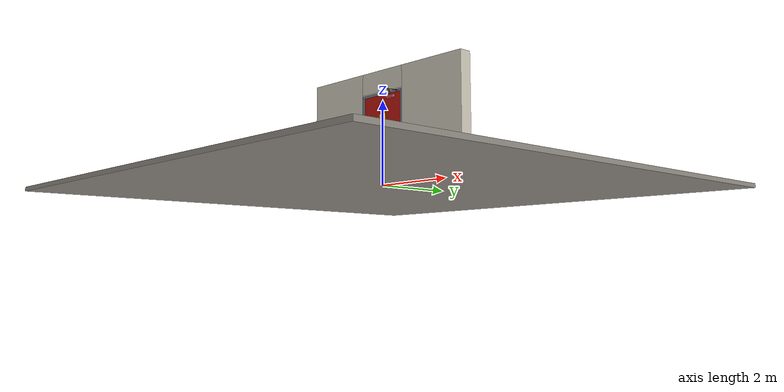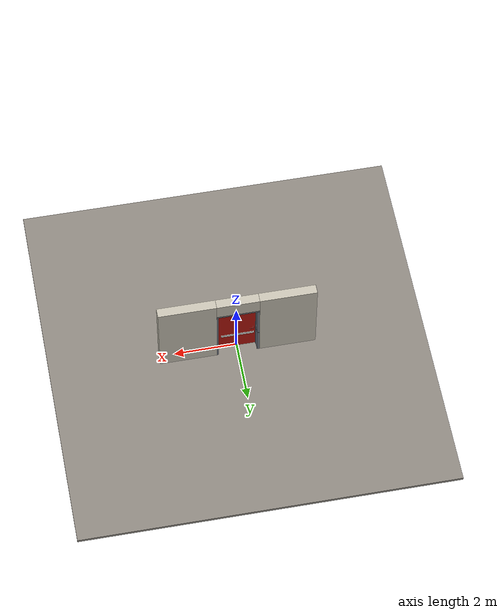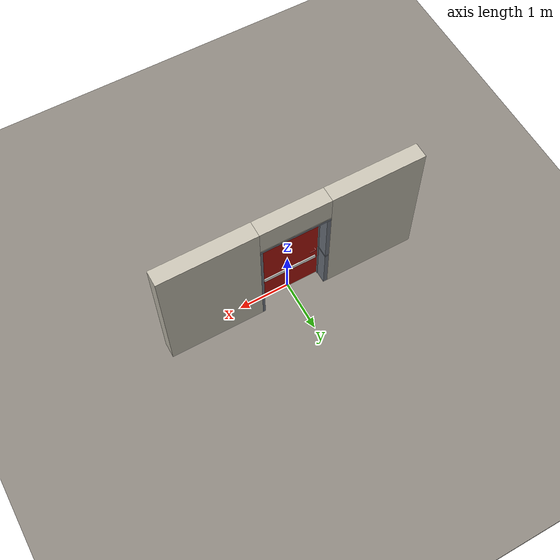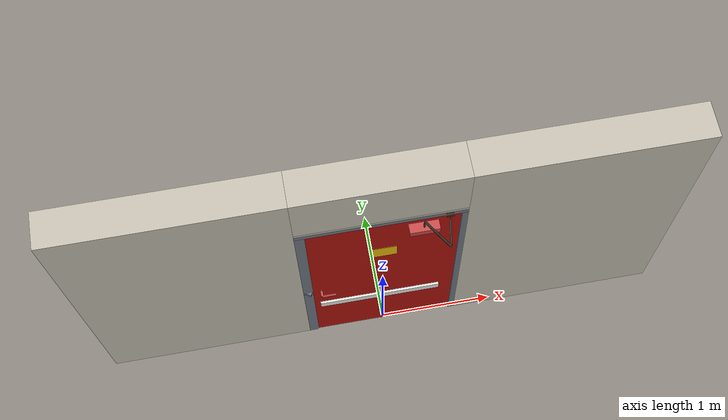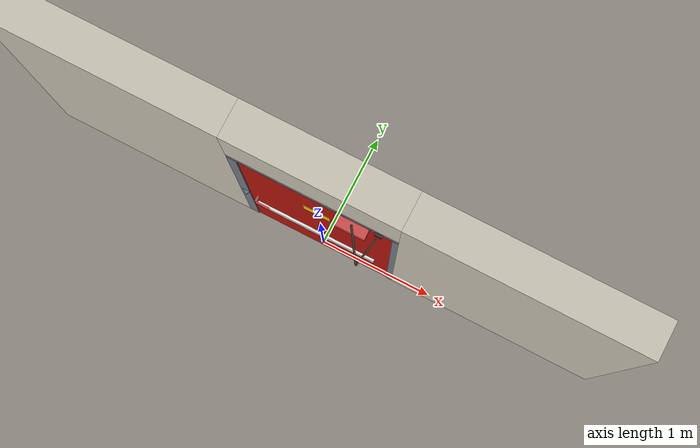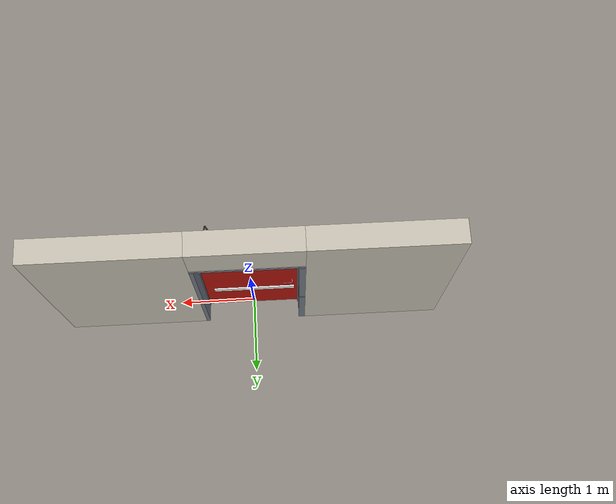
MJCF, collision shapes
<?xml version="1.0" ?>
<mujoco model="db0493_swing_single_full">
  <compiler angle="radian" meshdir="../../hardware" texturedir="../../textures" autolimits="true" inertiafromgeom="false"/>
  <option timestep="0.002" integrator="implicitfast" cone="elliptic" impratio="10" noslip_iterations="3">
    <flag multiccd="enable"/>
  </option>
  <size memory="16M"/>
  <default>
    <geom condim="4" solref="0.005 1" solimp="0.95 0.99 0.001"/>
    <joint solreflimit="0.005 1" solimplimit="0.95 0.99 0.001"/>
    <tendon solreflimit="0.005 1"/>
    <equality solref="0.002 1"/>
  </default>
  <visual>
    <headlight ambient="0.4 0.4 0.4" diffuse="0.7 0.7 0.7" specular="0.2 0.2 0.2"/>
    <quality shadowsize="4096"/>
    <map znear="0.01" zfar="60"/>
  </visual>
  <asset>
    <mesh name="closer_body_b226fdb10b" file="closer_body_b226fdb10b.obj"/>
    <mesh name="exit_sign_a6449bfa2c" file="exit_sign_a6449bfa2c.obj"/>
    <mesh name="hinge_ed08f20e7f" file="hinge_ed08f20e7f.obj"/>
    <mesh name="hinge_jamb_1278ce3e25" file="hinge_jamb_1278ce3e25.obj"/>
    <mesh name="lever_9f02b544cf" file="lever_9f02b544cf.obj"/>
    <material name="mat_floor" rgba="0.55 0.53 0.5 1" specular="0.2" shininess="0.15" reflectance="0"/>
    <material name="mat_wall" rgba="0.78 0.76 0.7 1" specular="0.2" shininess="0.1" reflectance="0"/>
    <material name="mat_leaf" rgba="0.7 0.08 0.05 1" specular="0.2" shininess="0.63" reflectance="0"/>
    <material name="mat_hinge" rgba="0.65 0.66 0.68 1" specular="0.74" shininess="0.5" reflectance="0.36"/>
    <material name="mat_op_nickel_satin" rgba="0.72 0.7 0.66 1" specular="0.8" shininess="0.65" reflectance="0.4"/>
    <material name="mat_trim" rgba="0.85 0.66 0.3 1" specular="0.8" shininess="0.75" reflectance="0.4"/>
    <material name="mat_bolt" rgba="0.85 0.66 0.3 1" specular="0.8" shininess="0.75" reflectance="0.4"/>
    <material name="mat_frame" rgba="0.45 0.48 0.52 1" specular="0.32" shininess="0.6" reflectance="0.08"/>
    <material name="mat_seal" rgba="0.1 0.1 0.1 1" specular="0.2" shininess="0.1" reflectance="0"/>
    <material name="mat_closer" rgba="0.22 0.17 0.13 1" specular="0.8" shininess="0.6" reflectance="0.4"/>
    <material name="mat_bumper" rgba="0.92 0.92 0.9 1" specular="0.2" shininess="0.6" reflectance="0"/>
    <material name="mat_exit_sign" rgba="0.85 0.1 0.1 1" specular="0.2" shininess="0.6" reflectance="0"/>
    <material name="mat_sign_bracket" rgba="0.8 0.81 0.83 1" specular="0.8" shininess="0.6" reflectance="0.4"/>
    <material name="mat_placard" rgba="0.95 0.75 0.05 1" specular="0.2" shininess="0.5" reflectance="0"/>
    <texture name="skybox" type="skybox" builtin="gradient" rgb1="0.6 0.7 0.85" rgb2="0.9 0.92 0.95" width="256" height="256"/>
  </asset>
  <worldbody>
    <light name="sun" pos="1.5 -2.5 4" dir="-0.3 0.5 -0.8" directional="true" diffuse="0.8 0.8 0.8" specular="0.3 0.3 0.3" castshadow="true"/>
    <light name="fill" pos="-1.5 2.5 3" dir="0.3 -0.5 -0.7" directional="true" diffuse="0.35 0.35 0.4" castshadow="false"/>
    <camera name="robot_view" pos="0 -2.516812 1.812087" xyaxes="1 0 0 0 0.26963 0.962964" fovy="52"/>
    <camera name="far_view" pos="0 2.758812 1.812087" xyaxes="-1 0 0 0 -0.26963 0.962964" fovy="52"/>
    <camera name="iso" pos="-2.004737 -2.094762 2.234138" xyaxes="0.741536 -0.670913 0 0.242917 0.268487 0.932151" fovy="46"/>
    <camera name="detail_handle" pos="-0.259 -0.877 1.245" xyaxes="0.97561 0.219512 0 -0.070934 0.315262 0.94635" fovy="38"/>
    <geom name="floor" type="box" size="6 6 0.05" pos="0 0 -0.05" material="mat_floor" group="0" contype="1" conaffinity="1" friction="0.8 0.005 0.0001" density="2400"/>
    <geom name="wall_left" type="box" size="0.9035 0.15 1.3735" pos="-1.5965 0.121 1.3735" material="mat_wall" group="0" contype="1" conaffinity="1" friction="0.6 0.005 0.0001" density="800"/>
    <geom name="wall_right" type="box" size="0.9185 0.15 1.3735" pos="1.5815 0.121 1.3735" material="mat_wall" group="0" contype="1" conaffinity="1" friction="0.6 0.005 0.0001" density="800"/>
    <geom name="wall_header" type="box" size="0.678 0.15 0.26" pos="-0.015 0.121 2.487" material="mat_wall" group="0" contype="1" conaffinity="1" friction="0.6 0.005 0.0001" density="800"/>
    <geom name="hinge_0_jamb" type="mesh" mesh="hinge_jamb_1278ce3e25" pos="0.61 -0.029 0.259" quat="0 0 1 0" material="mat_hinge" group="1" contype="0" conaffinity="0" density="7850"/>
    <geom name="hinge_1_jamb" type="mesh" mesh="hinge_jamb_1278ce3e25" pos="0.61 -0.029 0.827" quat="0 0 1 0" material="mat_hinge" group="1" contype="0" conaffinity="0" density="7850"/>
    <geom name="hinge_2_jamb" type="mesh" mesh="hinge_jamb_1278ce3e25" pos="0.61 -0.029 1.395" quat="0 0 1 0" material="mat_hinge" group="1" contype="0" conaffinity="0" density="7850"/>
    <geom name="hinge_3_jamb" type="mesh" mesh="hinge_jamb_1278ce3e25" pos="0.61 -0.029 1.963" quat="0 0 1 0" material="mat_hinge" group="1" contype="0" conaffinity="0" density="7850"/>
    <geom name="jamb_hinge" type="box" size="0.025 0.15 1.0735" pos="0.638 0.121 1.0735" material="mat_frame" group="0" contype="1" conaffinity="1" friction="0.6 0.005 0.0001" density="300"/>
    <geom name="strike_965_wall_n" type="box" size="0.04 0.13075 0.0183" pos="-0.653 0.14025 0.965" material="mat_frame" group="0" contype="1" conaffinity="1" friction="0.6 0.005 0.0001" density="300"/>
    <geom name="strike_965_wall_p" type="box" size="0.04 0.008 0.0183" pos="-0.653 -0.0175 0.965" material="mat_frame" group="0" contype="1" conaffinity="1" friction="0.6 0.005 0.0001" density="300"/>
    <geom name="strike_965_ramp" type="box" size="0.04 0.018028 0.0183" pos="-0.656282 -0.018312 0.965" quat="0.957092 0 0 -0.289784" material="mat_frame" group="0" contype="1" conaffinity="1" friction="0.12 0.005 0.0001" density="300"/>
    <geom name="strike_965_back" type="box" size="0.0285 0.0095 0.0183" pos="-0.6645 0 0.965" material="mat_frame" group="0" contype="1" conaffinity="1" friction="0.6 0.005 0.0001" density="300"/>
    <geom name="jamb_strike_0" type="box" size="0.04 0.15 0.47335" pos="-0.653 0.121 0.47335" material="mat_frame" group="0" contype="1" conaffinity="1" friction="0.6 0.005 0.0001" density="300"/>
    <geom name="jamb_strike_1" type="box" size="0.04 0.15 0.58185" pos="-0.653 0.121 1.56515" material="mat_frame" group="0" contype="1" conaffinity="1" friction="0.6 0.005 0.0001" density="300"/>
    <geom name="jamb_head" type="box" size="0.678 0.15 0.025" pos="-0.015 0.121 2.172" material="mat_frame" group="0" contype="1" conaffinity="1" friction="0.6 0.005 0.0001" density="300"/>
    <geom name="head_stud" type="box" size="0.678 0.15 0.015" pos="-0.015 0.121 2.212" material="mat_wall" group="0" contype="1" conaffinity="1" friction="0.6 0.005 0.0001" density="500"/>
    <geom name="stop_hinge" type="box" size="0.0055 0.016 1.0735" pos="0.6075 0.0385 1.0735" material="mat_frame" group="0" contype="1" conaffinity="1" friction="0.6 0.005 0.0001" density="300"/>
    <geom name="stop_strike" type="box" size="0.0055 0.016 1.0735" pos="-0.6075 0.0385 1.0735" material="mat_frame" group="0" contype="1" conaffinity="1" friction="0.6 0.005 0.0001" density="300"/>
    <geom name="stop_head" type="box" size="0.613 0.016 0.0055" pos="0 0.0385 2.1415" material="mat_frame" group="0" contype="1" conaffinity="1" friction="0.6 0.005 0.0001" density="300"/>
    <geom name="seal_hinge" type="box" size="0.004 0.002 1.0735" pos="0.61 0.024 1.0735" material="mat_seal" group="1" contype="0" conaffinity="0" density="1100"/>
    <geom name="seal_strike" type="box" size="0.004 0.002 1.0735" pos="-0.61 0.024 1.0735" material="mat_seal" group="1" contype="0" conaffinity="0" density="1100"/>
    <geom name="seal_head" type="box" size="0.593 0.002 0.008" pos="0 0.024 2.135" material="mat_seal" group="1" contype="0" conaffinity="0" density="1100"/>
    <geom name="closer_bracket" type="box" size="0.03 0.012 0.014" pos="0.513 -0.041 2.177" material="mat_closer" group="1" contype="0" conaffinity="0" density="2700"/>
    <geom name="exit_sign" type="mesh" mesh="exit_sign_a6449bfa2c" pos="0 0.15 2.447" material="mat_exit_sign" group="2" contype="0" conaffinity="0" density="500"/>
    <geom name="exit_sign_bracket" type="box" size="0.05775 0.00875 0.0605" pos="0 0.15 2.287" material="mat_sign_bracket" group="2" contype="0" conaffinity="0" density="7850"/>
    <site name="approach_point" pos="0 -1.5 0" quat="1 0 0 0" size="0.05" rgba="0.2 0.9 0.2 0.5" group="4"/>
    <site name="goal_point" pos="0 1.5 0" quat="1 0 0 0" size="0.05" rgba="0.2 0.9 0.2 0.5" group="4"/>
    <site name="door_plane_center" pos="0 0 1.0735" quat="1 0 0 0" size="0.02" rgba="0.2 0.9 0.2 0.5" group="4"/>
    <body name="leaf" pos="0.613 0 0">
      <inertial pos="-0.577532 -0.005858 1.145984" mass="82.171294" quat="0.521534 -0.521088 -0.471984 -0.483425" diaginertia="9.941340921 34.5385248 44.401891194"/>
      <joint name="leaf_hinge" type="hinge" axis="0 0 1" pos="-0.003 -0.029 0" limited="true" range="0 1.745329" solreflimit="0.02 1" damping="10.850995" frictionloss="2.057178" stiffness="19.945297" springref="-1.966378" armature="0.02"/>
      <geom name="leaf_slab" type="box" size="0.6095 0.022 1.067" pos="-0.6125 0 1.076" material="mat_leaf" group="0" contype="1" conaffinity="1" friction="0.4 0.005 0.0001" density="1"/>
      <geom name="hinge_0" type="mesh" mesh="hinge_ed08f20e7f" pos="-0.003 -0.029 0.259" quat="0 0 1 0" material="mat_hinge" group="1" contype="0" conaffinity="0" density="7850"/>
      <geom name="hinge_1" type="mesh" mesh="hinge_ed08f20e7f" pos="-0.003 -0.029 0.827" quat="0 0 1 0" material="mat_hinge" group="1" contype="0" conaffinity="0" density="7850"/>
      <geom name="hinge_2" type="mesh" mesh="hinge_ed08f20e7f" pos="-0.003 -0.029 1.395" quat="0 0 1 0" material="mat_hinge" group="1" contype="0" conaffinity="0" density="7850"/>
      <geom name="hinge_3" type="mesh" mesh="hinge_ed08f20e7f" pos="-0.003 -0.029 1.963" quat="0 0 1 0" material="mat_hinge" group="1" contype="0" conaffinity="0" density="7850"/>
      <geom name="leaf_latch_bolt_faceplate" type="box" size="0.0006 0.014 0.0283" pos="-1.2214 0 0.965" material="mat_bolt" group="1" contype="0" conaffinity="0" density="8500"/>
      <geom name="closer_body" type="mesh" mesh="closer_body_b226fdb10b" pos="-0.3 -0.022 2.054" quat="0 0 -0.707107 0.707107" material="mat_closer" group="1" contype="0" conaffinity="0" density="2000"/>
      <geom name="closer_body_col" type="box" size="0.12 0.04 0.03" pos="-0.3 -0.062 2.054" material="mat_closer" group="3" contype="1" conaffinity="1" rgba="0.8 0.3 0.3 0.25" friction="0.6 0.005 0.0001" density="2000"/>
      <geom name="closer_pinion_shaft" type="cylinder" size="0.008 0.0615" pos="-0.3 -0.064 2.1155" material="mat_closer" group="1" contype="0" conaffinity="0" density="2700"/>
      <geom name="bumper_rail_n" type="box" size="0.5245 0.01 0.04" pos="-0.6475 -0.032 0.659" material="mat_bumper" group="0" contype="1" conaffinity="1" friction="0.6 0.005 0.0001" density="1200"/>
      <geom name="bumper_rail_p" type="box" size="0.5245 0.01 0.04" pos="-0.6475 0.032 0.659" material="mat_bumper" group="0" contype="1" conaffinity="1" friction="0.6 0.005 0.0001" density="1200"/>
      <geom name="warning_placard" type="box" size="0.11 0.001 0.08" pos="-0.6125 -0.023 1.6095" material="mat_placard" group="2" contype="0" conaffinity="0" density="1000"/>
      <site name="leaf_edge_mid" pos="-1.222 0 1.067" quat="1 0 0 0" size="0.02" rgba="0.2 0.9 0.2 0.5" group="4"/>
      <body name="leaf_handle" pos="-1.152 0 0.965">
        <inertial pos="0.028544 0 0" mass="0.978187" quat="0 0.707107 0.707107 0" diaginertia="0.001772047 0.003604455 0.005198299"/>
        <joint name="leaf_handle_hinge" type="hinge" axis="0 1 0" limited="true" range="0 0.96" damping="0.245624" frictionloss="0.048" stiffness="1.2" springref="-0.458333" armature="0.01"/>
        <geom name="leaf_handle_spindle" type="cylinder" size="0.006 0.03" pos="0 0 0" quat="0.707107 -0.707107 0 0" material="mat_op_nickel_satin" group="1" contype="0" conaffinity="0" density="7850"/>
        <geom name="leaf_handle_lever_n" type="mesh" mesh="lever_9f02b544cf" pos="0 -0.022 0" quat="0 0 -0.707107 0.707107" material="mat_op_nickel_satin" group="1" contype="0" conaffinity="0" density="3000"/>
        <geom name="leaf_handle_lever_col_n" type="capsule" size="0.0095 0.053" pos="0.0625 -0.077 0" quat="0.707107 0 0.707107 0" material="mat_op_nickel_satin" group="3" contype="1" conaffinity="1" rgba="0.8 0.3 0.3 0.25" friction="0.7 0.01 0.0001" density="3000"/>
        <geom name="leaf_handle_hub_col_n" type="cylinder" size="0.012 0.022" pos="0 -0.052 0" quat="0.707107 -0.707107 0 0" material="mat_op_nickel_satin" group="3" contype="1" conaffinity="1" rgba="0.8 0.3 0.3 0.25" friction="0.6 0.005 0.0001" density="3000"/>
        <geom name="leaf_handle_lever_p" type="mesh" mesh="lever_9f02b544cf" pos="0 0.022 0" quat="0 0 0.707107 0.707107" material="mat_op_nickel_satin" group="1" contype="0" conaffinity="0" density="3000"/>
        <geom name="leaf_handle_lever_col_p" type="capsule" size="0.0095 0.053" pos="0.0625 0.077 0" quat="0.707107 0 0.707107 0" material="mat_op_nickel_satin" group="3" contype="1" conaffinity="1" rgba="0.8 0.3 0.3 0.25" friction="0.7 0.01 0.0001" density="3000"/>
        <geom name="leaf_handle_hub_col_p" type="cylinder" size="0.012 0.022" pos="0 0.052 0" quat="0.707107 -0.707107 0 0" material="mat_op_nickel_satin" group="3" contype="1" conaffinity="1" rgba="0.8 0.3 0.3 0.25" friction="0.6 0.005 0.0001" density="3000"/>
        <site name="leaf_handle_grip_n" pos="0.1 -0.077 0" quat="1 0 0 0" size="0.012" rgba="0.2 0.9 0.2 0.5" group="4"/>
        <site name="leaf_handle_grip_p" pos="0.1 0.077 0" quat="1 0 0 0" size="0.012" rgba="0.2 0.9 0.2 0.5" group="4"/>
      </body>
      <body name="leaf_latch_bolt" pos="-1.222 0 0.965">
        <inertial pos="0.0055 0 0" mass="0.074627" quat="0.92388 0.382683 0 0" diaginertia="0.000002271 0.000013255 0.000013255"/>
        <joint name="leaf_latch_bolt_slide" type="slide" axis="1 0 0" limited="true" range="0 0.019" damping="2" frictionloss="0.3" stiffness="600" springref="-0.01" armature="0.1"/>
        <geom name="leaf_latch_bolt_capsule" type="capsule" size="0.008 0.0165" pos="0.0055 0 0" quat="0.707107 0 -0.707107 0" material="mat_bolt" group="0" contype="1" conaffinity="1" friction="0.2 0.005 0.0001" density="8500"/>
      </body>
      <body name="closer_arm_main" pos="-0.3 -0.064 2.177" quat="0.881485 0 0 -0.472212">
        <inertial pos="0.14 0 0" mass="0.12096" quat="1 0 0 0" diaginertia="0.000003588 0.00079128 0.000792852"/>
        <joint name="closer_pinion" type="hinge" axis="0 0 1" limited="false" damping="0.01" armature="0.002"/>
        <geom name="closer_arm_main_geom" type="box" size="0.14 0.008 0.005" pos="0.14 0 0" material="mat_closer" group="1" contype="0" conaffinity="0" density="2700"/>
        <body name="closer_arm_fore" pos="0.28 0 0" quat="0.371222 0 0 0.928544">
          <inertial pos="0.128088 0 0" mass="0.076531" quat="1 0 0 0" diaginertia="0.000001771 0.000437665 0.000438201"/>
          <joint name="closer_elbow" type="hinge" axis="0 0 1" limited="false" damping="0.01" armature="0.002"/>
          <geom name="closer_arm_fore_geom" type="box" size="0.1125 0.007 0.004" pos="0.1125 0 0" material="mat_closer" group="1" contype="0" conaffinity="0" density="2700"/>
          <geom name="closer_fore_neck" type="box" size="0.0175 0.003 0.003" pos="0.2425 0 0" material="mat_closer" group="1" contype="0" conaffinity="0" density="2700"/>
          <geom name="closer_fore_pivot" type="cylinder" size="0.005 0.012" pos="0.26 0 0" material="mat_closer" group="1" contype="0" conaffinity="0" density="2700"/>
        </body>
      </body>
    </body>
  </worldbody>
  <tendon>
    <fixed name="leaf_latch_bolt_coupling" limited="true" range="0 10">
      <joint joint="leaf_latch_bolt_slide" coef="1"/>
      <joint joint="leaf_handle_hinge" coef="-0.020879"/>
    </fixed>
  </tendon>
  <equality>
    <connect name="closer_arm_connect" body1="closer_arm_fore" body2="world" anchor="0.26 0 0" active="true"/>
  </equality>
  <contact>
    <exclude body1="closer_arm_main" body2="leaf"/>
    <exclude body1="closer_arm_fore" body2="leaf"/>
    <exclude body1="closer_arm_main" body2="closer_arm_fore"/>
  </contact>
  <sensor>
    <jointpos name="leaf_hinge_pos" joint="leaf_hinge"/>
    <jointvel name="leaf_hinge_vel" joint="leaf_hinge"/>
    <jointpos name="leaf_handle_hinge_pos" joint="leaf_handle_hinge"/>
    <jointvel name="leaf_handle_hinge_vel" joint="leaf_handle_hinge"/>
    <jointpos name="leaf_latch_bolt_slide_pos" joint="leaf_latch_bolt_slide"/>
    <jointvel name="leaf_latch_bolt_slide_vel" joint="leaf_latch_bolt_slide"/>
  </sensor>
</mujoco>
